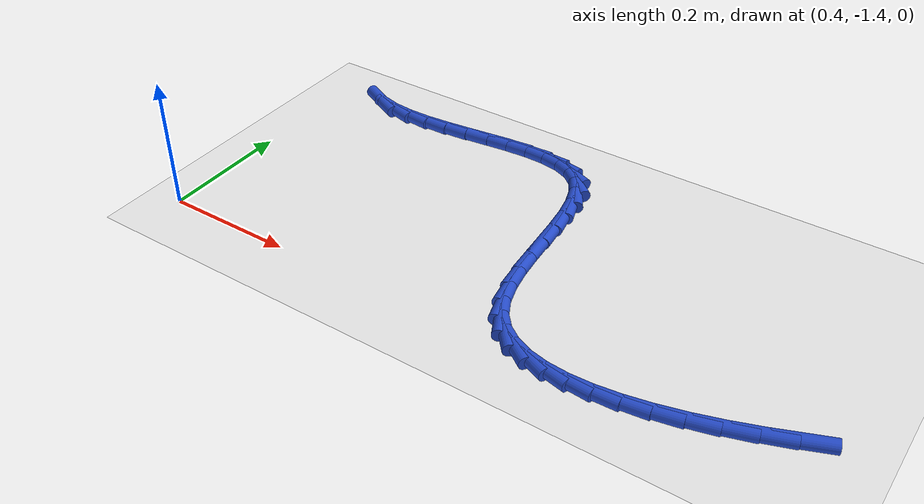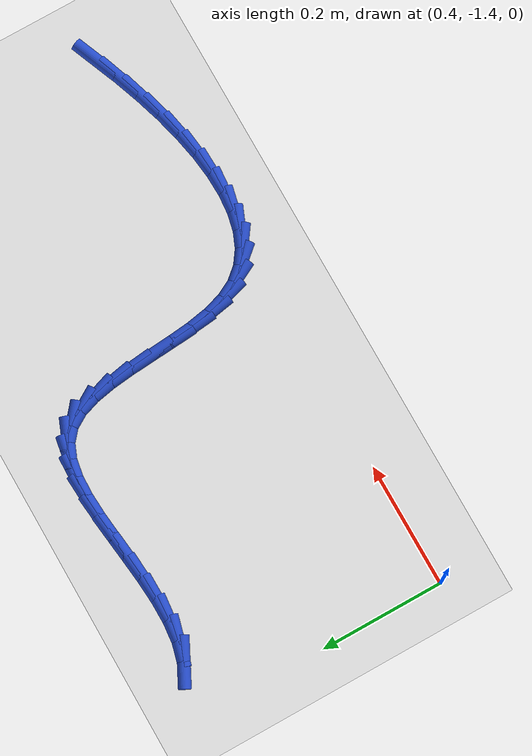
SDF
<sdf version="1.6">
 <world name="default">
  <model name="ground_plane">
   <static>1</static>
   <link name="link">
    <collision name="collision">
     <geometry><plane><normal>0 0 1</normal><size>100 100</size></plane></geometry>
     <surface><friction><ode><mu>100</mu><mu2>50</mu2></ode></friction></surface>
    </collision>
    <visual name="visual">
     <cast_shadows>0</cast_shadows>
     <geometry><plane><normal>0 0 1</normal><size>100 100</size></plane></geometry>
     <material>
      <script><uri>file://media/materials/scripts/gazebo.material</uri><name>Gazebo/WhiteGlow</name></script>
     </material>
    </visual>
   </link>
  </model>
  <model name="line">
   <link name="link_211">
    <pose>1.3504458397697687 -1.3429852206407296 0.01 0 1.57 0.38551248191996373</pose>
    <collision name="collision">
     <geometry><cylinder><radius>0.01</radius><length>0.08</length></cylinder></geometry>
    </collision>
    <visual name="visual">
     <material>
      <script><name>Gazebo/Blue</name><uri>file://media/materials/scripts/gazebo.material</uri></script>
     </material>
     <geometry><cylinder><radius>0.01</radius><length>0.08</length></cylinder></geometry>
    </visual>
   </link>
   <link name="link_212">
    <pose>1.3084306698609822 -1.3600357657168785 0.01 0 1.57 0.3466913353634904</pose>
    <collision name="collision">
     <geometry><cylinder><radius>0.01</radius><length>0.08</length></cylinder></geometry>
    </collision>
    <visual name="visual">
     <material>
      <script><name>Gazebo/Blue</name><uri>file://media/materials/scripts/gazebo.material</uri></script>
     </material>
     <geometry><cylinder><radius>0.01</radius><length>0.08</length></cylinder></geometry>
    </visual>
   </link>
   <link name="link_213">
    <pose>1.2665144220794489 -1.375179413329483 0.01 0 1.57 0.30300604338132875</pose>
    <collision name="collision">
     <geometry><cylinder><radius>0.01</radius><length>0.08</length></cylinder></geometry>
    </collision>
    <visual name="visual">
     <material>
      <script><name>Gazebo/Blue</name><uri>file://media/materials/scripts/gazebo.material</uri></script>
     </material>
     <geometry><cylinder><radius>0.01</radius><length>0.08</length></cylinder></geometry>
    </visual>
   </link>
   <link name="link_214">
    <pose>1.2251293841068736 -1.3881177424663402 0.01 0 1.57 0.2523744684889546</pose>
    <collision name="collision">
     <geometry><cylinder><radius>0.01</radius><length>0.08</length></cylinder></geometry>
    </collision>
    <visual name="visual">
     <material>
      <script><name>Gazebo/Blue</name><uri>file://media/materials/scripts/gazebo.material</uri></script>
     </material>
     <geometry><cylinder><radius>0.01</radius><length>0.08</length></cylinder></geometry>
    </visual>
   </link>
   <link name="link_215">
    <pose>1.184687109589446 -1.398546702731634 0.01 0 1.57 0.1924203439786976</pose>
    <collision name="collision">
     <geometry><cylinder><radius>0.01</radius><length>0.08</length></cylinder></geometry>
    </collision>
    <visual name="visual">
     <material>
      <script><name>Gazebo/Blue</name><uri>file://media/materials/scripts/gazebo.material</uri></script>
     </material>
     <geometry><cylinder><radius>0.01</radius><length>0.08</length></cylinder></geometry>
    </visual>
   </link>
   <link name="link_216">
    <pose>1.1455991521733557 -1.4061622437295493 0.01 0 1.57 0.11994186794032302</pose>
    <collision name="collision">
     <geometry><cylinder><radius>0.01</radius><length>0.08</length></cylinder></geometry>
    </collision>
    <visual name="visual">
     <material>
      <script><name>Gazebo/Blue</name><uri>file://media/materials/scripts/gazebo.material</uri></script>
     </material>
     <geometry><cylinder><radius>0.01</radius><length>0.08</length></cylinder></geometry>
    </visual>
   </link>
   <link name="link_217">
    <pose>1.1082770655047924 -1.4106603150642711 0.01 0 1.57 0.030622423980723314</pose>
    <collision name="collision">
     <geometry><cylinder><radius>0.01</radius><length>0.08</length></cylinder></geometry>
    </collision>
    <visual name="visual">
     <material>
      <script><name>Gazebo/Blue</name><uri>file://media/materials/scripts/gazebo.material</uri></script>
     </material>
     <geometry><cylinder><radius>0.01</radius><length>0.08</length></cylinder></geometry>
    </visual>
   </link>
   <link name="link_218">
    <pose>1.0731324032299476 -1.4117368663399816 0.01 0 1.57 -0.08119000002507473</pose>
    <collision name="collision">
     <geometry><cylinder><radius>0.01</radius><length>0.08</length></cylinder></geometry>
    </collision>
    <visual name="visual">
     <material>
      <script><name>Gazebo/Blue</name><uri>file://media/materials/scripts/gazebo.material</uri></script>
     </material>
     <geometry><cylinder><radius>0.01</radius><length>0.08</length></cylinder></geometry>
    </visual>
   </link>
   <link name="link_219">
    <pose>1.0405767189950104 -1.409087847160867 0.01 0 1.57 -0.22223951286161725</pose>
    <collision name="collision">
     <geometry><cylinder><radius>0.01</radius><length>0.08</length></cylinder></geometry>
    </collision>
    <visual name="visual">
     <material>
      <script><name>Gazebo/Blue</name><uri>file://media/materials/scripts/gazebo.material</uri></script>
     </material>
     <geometry><cylinder><radius>0.01</radius><length>0.08</length></cylinder></geometry>
    </visual>
   </link>
   <link name="link_220">
    <pose>1.01102156644617 -1.402409207131111 0.01 0 1.57 -0.3986752739024098</pose>
    <collision name="collision">
     <geometry><cylinder><radius>0.01</radius><length>0.08</length></cylinder></geometry>
    </collision>
    <visual name="visual">
     <material>
      <script><name>Gazebo/Blue</name><uri>file://media/materials/scripts/gazebo.material</uri></script>
     </material>
     <geometry><cylinder><radius>0.01</radius><length>0.08</length></cylinder></geometry>
    </visual>
   </link>
   <link name="link_221">
    <pose>0.9848784992296173 -1.3913968958548981 0.01 0 1.57 -0.611520362050318</pose>
    <collision name="collision">
     <geometry><cylinder><radius>0.01</radius><length>0.08</length></cylinder></geometry>
    </collision>
    <visual name="visual">
     <material>
      <script><name>Gazebo/Blue</name><uri>file://media/materials/scripts/gazebo.material</uri></script>
     </material>
     <geometry><cylinder><radius>0.01</radius><length>0.08</length></cylinder></geometry>
    </visual>
   </link>
   <link name="link_222">
    <pose>0.9625590709915417 -1.3757468629364125 0.01 0 1.57 -0.8501427580194238</pose>
    <collision name="collision">
     <geometry><cylinder><radius>0.01</radius><length>0.08</length></cylinder></geometry>
    </collision>
    <visual name="visual">
     <material>
      <script><name>Gazebo/Blue</name><uri>file://media/materials/scripts/gazebo.material</uri></script>
     </material>
     <geometry><cylinder><radius>0.01</radius><length>0.08</length></cylinder></geometry>
    </visual>
   </link>
   <link name="link_223">
    <pose>0.9444748353781331 -1.3551550579798384 0.01 0 1.57 -1.0895843450657292</pose>
    <collision name="collision">
     <geometry><cylinder><radius>0.01</radius><length>0.08</length></cylinder></geometry>
    </collision>
    <visual name="visual">
     <material>
      <script><name>Gazebo/Blue</name><uri>file://media/materials/scripts/gazebo.material</uri></script>
     </material>
     <geometry><cylinder><radius>0.01</radius><length>0.08</length></cylinder></geometry>
    </visual>
   </link>
   <link name="link_224">
    <pose>0.9310027211554927 -1.329353937324929 0.01 0 1.57 -1.2774186135884036</pose>
    <collision name="collision">
     <geometry><cylinder><radius>0.01</radius><length>0.08</length></cylinder></geometry>
    </collision>
    <visual name="visual">
     <material>
      <script><name>Gazebo/Blue</name><uri>file://media/materials/scripts/gazebo.material</uri></script>
     </material>
     <geometry><cylinder><radius>0.01</radius><length>0.08</length></cylinder></geometry>
    </visual>
   </link>
   <link name="link_225">
    <pose>0.921787121982547 -1.2988483055588085 0.01 0 1.57 -1.395582892494869</pose>
    <collision name="collision">
     <geometry><cylinder><radius>0.01</radius><length>0.08</length></cylinder></geometry>
    </collision>
    <visual name="visual">
     <material>
      <script><name>Gazebo/Blue</name><uri>file://media/materials/scripts/gazebo.material</uri></script>
     </material>
     <geometry><cylinder><radius>0.01</radius><length>0.08</length></cylinder></geometry>
    </visual>
   </link>
   <link name="link_226">
    <pose>0.9157736985980629 -1.2648796761866854 0.01 0 1.57 -1.4635389835573396</pose>
    <collision name="collision">
     <geometry><cylinder><radius>0.01</radius><length>0.08</length></cylinder></geometry>
    </collision>
    <visual name="visual">
     <material>
      <script><name>Gazebo/Blue</name><uri>file://media/materials/scripts/gazebo.material</uri></script>
     </material>
     <geometry><cylinder><radius>0.01</radius><length>0.08</length></cylinder></geometry>
    </visual>
   </link>
   <link name="link_227">
    <pose>0.9118802520284095 -1.2287189365961053 0.01 0 1.57 -1.4939383781409317</pose>
    <collision name="collision">
     <geometry><cylinder><radius>0.01</radius><length>0.08</length></cylinder></geometry>
    </collision>
    <visual name="visual">
     <material>
      <script><name>Gazebo/Blue</name><uri>file://media/materials/scripts/gazebo.material</uri></script>
     </material>
     <geometry><cylinder><radius>0.01</radius><length>0.08</length></cylinder></geometry>
    </visual>
   </link>
   <link name="link_228">
    <pose>0.9090245832999554 -1.1916369741746105 0.01 0 1.57 -1.492007722878738</pose>
    <collision name="collision">
     <geometry><cylinder><radius>0.01</radius><length>0.08</length></cylinder></geometry>
    </collision>
    <visual name="visual">
     <material>
      <script><name>Gazebo/Blue</name><uri>file://media/materials/scripts/gazebo.material</uri></script>
     </material>
     <geometry><cylinder><radius>0.01</radius><length>0.08</length></cylinder></geometry>
    </visual>
   </link>
   <link name="link_229">
    <pose>0.906124493439069 -1.1549046763097437 0.01 0 1.57 -1.456612465753311</pose>
    <collision name="collision">
     <geometry><cylinder><radius>0.01</radius><length>0.08</length></cylinder></geometry>
    </collision>
    <visual name="visual">
     <material>
      <script><name>Gazebo/Blue</name><uri>file://media/materials/scripts/gazebo.material</uri></script>
     </material>
     <geometry><cylinder><radius>0.01</radius><length>0.08</length></cylinder></geometry>
    </visual>
   </link>
   <link name="link_230">
    <pose>0.9020977834721191 -1.1197929303890488 0.01 0 1.57 -1.3796315914268857</pose>
    <collision name="collision">
     <geometry><cylinder><radius>0.01</radius><length>0.08</length></cylinder></geometry>
    </collision>
    <visual name="visual">
     <material>
      <script><name>Gazebo/Blue</name><uri>file://media/materials/scripts/gazebo.material</uri></script>
     </material>
     <geometry><cylinder><radius>0.01</radius><length>0.08</length></cylinder></geometry>
    </visual>
   </link>
   <link name="link_231">
    <pose>0.8958622544254744 -1.0875726238000682 0.01 0 1.57 -1.243478500989604</pose>
    <collision name="collision">
     <geometry><cylinder><radius>0.01</radius><length>0.08</length></cylinder></geometry>
    </collision>
    <visual name="visual">
     <material>
      <script><name>Gazebo/Blue</name><uri>file://media/materials/scripts/gazebo.material</uri></script>
     </material>
     <geometry><cylinder><radius>0.01</radius><length>0.08</length></cylinder></geometry>
    </visual>
   </link>
   <link name="link_232">
    <pose>0.8863357073255035 -1.059514643930346 0.01 0 1.57 -1.0198844419357962</pose>
    <collision name="collision">
     <geometry><cylinder><radius>0.01</radius><length>0.08</length></cylinder></geometry>
    </collision>
    <visual name="visual">
     <material>
      <script><name>Gazebo/Blue</name><uri>file://media/materials/scripts/gazebo.material</uri></script>
     </material>
     <geometry><cylinder><radius>0.01</radius><length>0.08</length></cylinder></geometry>
    </visual>
   </link>
   <link name="link_233">
    <pose>0.8724359431985754 -1.0368898781674254 0.01 0 1.57 -0.6976204424562835</pose>
    <collision name="collision">
     <geometry><cylinder><radius>0.01</radius><length>0.08</length></cylinder></geometry>
    </collision>
    <visual name="visual">
     <material>
      <script><name>Gazebo/Blue</name><uri>file://media/materials/scripts/gazebo.material</uri></script>
     </material>
     <geometry><cylinder><radius>0.01</radius><length>0.08</length></cylinder></geometry>
    </visual>
   </link>
   <link name="link_234">
    <pose>0.8532262249199424 -1.0207877395390743 0.01 0 1.57 -0.38897755268478335</pose>
    <collision name="collision">
     <geometry><cylinder><radius>0.01</radius><length>0.08</length></cylinder></geometry>
    </collision>
    <visual name="visual">
     <material>
      <script><name>Gazebo/Blue</name><uri>file://media/materials/scripts/gazebo.material</uri></script>
     </material>
     <geometry><cylinder><radius>0.01</radius><length>0.08</length></cylinder></geometry>
    </visual>
   </link>
   <link name="link_235">
    <pose>0.8289423936745225 -1.0108347633517696 0.01 0 1.57 -0.1693868934820248</pose>
    <collision name="collision">
     <geometry><cylinder><radius>0.01</radius><length>0.08</length></cylinder></geometry>
    </collision>
    <visual name="visual">
     <material>
      <script><name>Gazebo/Blue</name><uri>file://media/materials/scripts/gazebo.material</uri></script>
     </material>
     <geometry><cylinder><radius>0.01</radius><length>0.08</length></cylinder></geometry>
    </visual>
   </link>
   <link name="link_236">
    <pose>0.8003865887469306 -1.0059509863635916 0.01 0 1.57 -0.028070851180701496</pose>
    <collision name="collision">
     <geometry><cylinder><radius>0.01</radius><length>0.08</length></cylinder></geometry>
    </collision>
    <visual name="visual">
     <material>
      <script><name>Gazebo/Blue</name><uri>file://media/materials/scripts/gazebo.material</uri></script>
     </material>
     <geometry><cylinder><radius>0.01</radius><length>0.08</length></cylinder></geometry>
    </visual>
   </link>
   <link name="link_237">
    <pose>0.7683646198000387 -1.0050518662656707 0.01 0 1.57 0.05763104879432674</pose>
    <collision name="collision">
     <geometry><cylinder><radius>0.01</radius><length>0.08</length></cylinder></geometry>
    </collision>
    <visual name="visual">
     <material>
      <script><name>Gazebo/Blue</name><uri>file://media/materials/scripts/gazebo.material</uri></script>
     </material>
     <geometry><cylinder><radius>0.01</radius><length>0.08</length></cylinder></geometry>
    </visual>
   </link>
   <link name="link_238">
    <pose>0.7336822964967192 -1.0070528607491385 0.01 0 1.57 0.10408049995683</pose>
    <collision name="collision">
     <geometry><cylinder><radius>0.01</radius><length>0.08</length></cylinder></geometry>
    </collision>
    <visual name="visual">
     <material>
      <script><name>Gazebo/Blue</name><uri>file://media/materials/scripts/gazebo.material</uri></script>
     </material>
     <geometry><cylinder><radius>0.01</radius><length>0.08</length></cylinder></geometry>
    </visual>
   </link>
   <link name="link_239">
    <pose>0.6971454284998455 -1.0108694275051264 0.01 0 1.57 0.12040776309149855</pose>
    <collision name="collision">
     <geometry><cylinder><radius>0.01</radius><length>0.08</length></cylinder></geometry>
    </collision>
    <visual name="visual">
     <material>
      <script><name>Gazebo/Blue</name><uri>file://media/materials/scripts/gazebo.material</uri></script>
     </material>
     <geometry><cylinder><radius>0.01</radius><length>0.08</length></cylinder></geometry>
    </visual>
   </link>
   <link name="link_240">
    <pose>0.6595598254722899 -1.0154170242247655 0.01 0 1.57 0.11041996939741572</pose>
    <collision name="collision">
     <geometry><cylinder><radius>0.01</radius><length>0.08</length></cylinder></geometry>
    </collision>
    <visual name="visual">
     <material>
      <script><name>Gazebo/Blue</name><uri>file://media/materials/scripts/gazebo.material</uri></script>
     </material>
     <geometry><cylinder><radius>0.01</radius><length>0.08</length></cylinder></geometry>
    </visual>
   </link>
   <link name="link_241">
    <pose>0.621731297076925 -1.0196111085991868 0.01 0 1.57 0.07382192035818842</pose>
    <collision name="collision">
     <geometry><cylinder><radius>0.01</radius><length>0.08</length></cylinder></geometry>
    </collision>
    <visual name="visual">
     <material>
      <script><name>Gazebo/Blue</name><uri>file://media/materials/scripts/gazebo.material</uri></script>
     </material>
     <geometry><cylinder><radius>0.01</radius><length>0.08</length></cylinder></geometry>
    </visual>
   </link>
   <link name="link_242">
    <pose>0.5844656529766236 -1.0223671383195223 0.01 0 1.57 0.006502766004783004</pose>
    <collision name="collision">
     <geometry><cylinder><radius>0.01</radius><length>0.08</length></cylinder></geometry>
    </collision>
    <visual name="visual">
     <material>
      <script><name>Gazebo/Blue</name><uri>file://media/materials/scripts/gazebo.material</uri></script>
     </material>
     <geometry><cylinder><radius>0.01</radius><length>0.08</length></cylinder></geometry>
    </visual>
   </link>
   <link name="link_243">
    <pose>0.5485687028342574 -1.0226005710769026 0.01 0 1.57 -0.09971157292961524</pose>
    <collision name="collision">
     <geometry><cylinder><radius>0.01</radius><length>0.08</length></cylinder></geometry>
    </collision>
    <visual name="visual">
     <material>
      <script><name>Gazebo/Blue</name><uri>file://media/materials/scripts/gazebo.material</uri></script>
     </material>
     <geometry><cylinder><radius>0.01</radius><length>0.08</length></cylinder></geometry>
    </visual>
   </link>
   <link name="link_244">
    <pose>0.514846256312701 -1.0192268645624594 0.01 0 1.57 -0.25657376030861395</pose>
    <collision name="collision">
     <geometry><cylinder><radius>0.01</radius><length>0.08</length></cylinder></geometry>
    </collision>
    <visual name="visual">
     <material>
      <script><name>Gazebo/Blue</name><uri>file://media/materials/scripts/gazebo.material</uri></script>
     </material>
     <geometry><cylinder><radius>0.01</radius><length>0.08</length></cylinder></geometry>
    </visual>
   </link>
   <link name="link_245">
    <pose>0.4841041230748261 -1.0111614764673236 0.01 0 1.57 -0.4668071941384809</pose>
    <collision name="collision">
     <geometry><cylinder><radius>0.01</radius><length>0.08</length></cylinder></geometry>
    </collision>
    <visual name="visual">
     <material>
      <script><name>Gazebo/Blue</name><uri>file://media/materials/scripts/gazebo.material</uri></script>
     </material>
     <geometry><cylinder><radius>0.01</radius><length>0.08</length></cylinder></geometry>
    </visual>
   </link>
  </model>
 </world>
</sdf>
